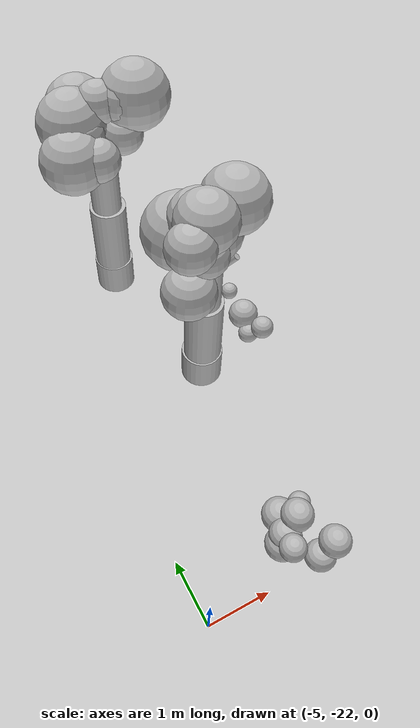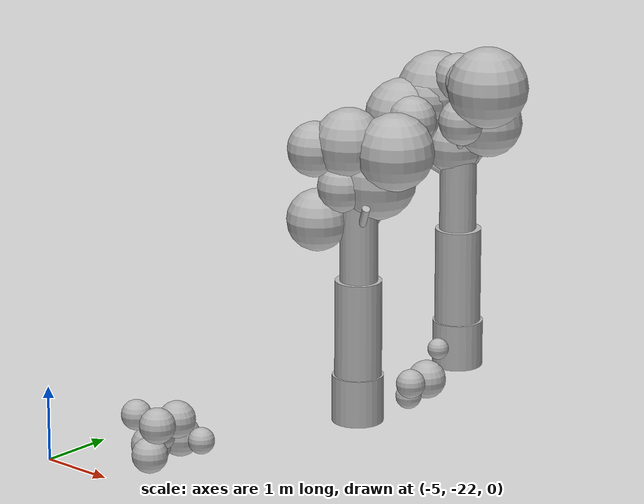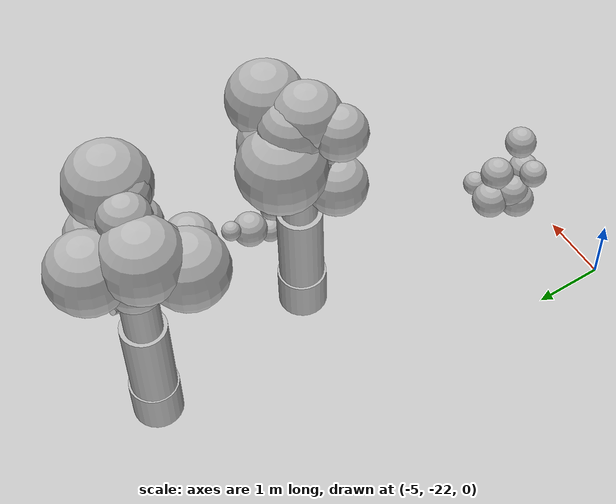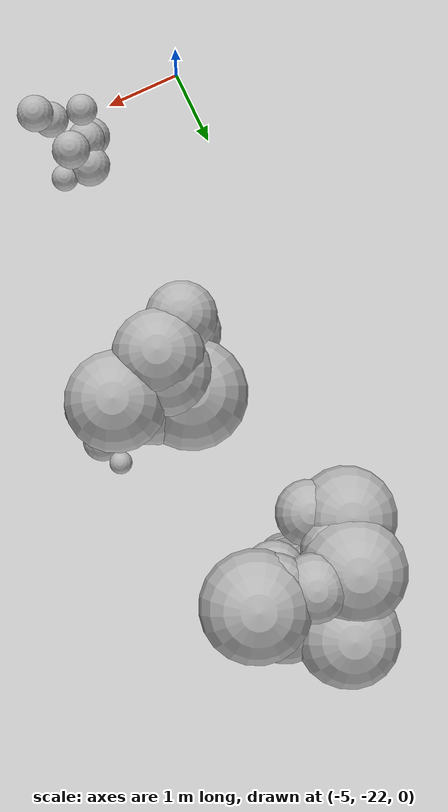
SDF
<sdf version="1.6">
 <world name="default">
  <model name="bush_0">
   <static>true</static>
   <pose>-3.0495 -18.1705 0 0 0 0</pose>
   <link name="trunk">
    <pose>0 0 1.5000 0 0 0</pose>
    <collision name="trunk_c">
     <geometry><cylinder><radius>0.3500</radius><length>3.0000</length></cylinder></geometry>
    </collision>
   </link>
   <link name="trunk_v0">
    <pose>0.0009 -0.0003 0.3100 0 0 0</pose>
    <visual name="trunk_v0_v">
     <geometry><cylinder><radius>0.3448</radius><length>0.6448</length></cylinder></geometry>
     <material>
      <script>
       <uri>model://bushfire/materials/scripts</uri>
       <uri>model://bushfire/materials/textures</uri>
       <name>Bushfire/CharBark</name>
      </script>
     </material>
    </visual>
   </link>
   <link name="trunk_v1">
    <pose>0.0067 -0.0025 1.2700 0 0 0</pose>
    <visual name="trunk_v1_v">
     <geometry><cylinder><radius>0.3150</radius><length>1.3520</length></cylinder></geometry>
     <material>
      <script>
       <uri>model://bushfire/materials/scripts</uri>
       <uri>model://bushfire/materials/textures</uri>
       <name>Bushfire/BarkSmooth</name>
      </script>
     </material>
    </visual>
   </link>
   <link name="trunk_v2">
    <pose>0.0169 -0.0063 2.4600 0 0 0</pose>
    <visual name="trunk_v2_v">
     <geometry><cylinder><radius>0.2520</radius><length>1.1232</length></cylinder></geometry>
     <material>
      <script>
       <uri>model://bushfire/materials/scripts</uri>
       <uri>model://bushfire/materials/textures</uri>
       <name>Bushfire/BarkSmooth</name>
      </script>
     </material>
    </visual>
   </link>
   <link name="branch0">
    <pose>-0.0791 -0.1858 2.6366 0 0.8219 4.3099</pose>
    <visual name="branch0_v">
     <geometry><cylinder><radius>0.0361</radius><length>0.5515</length></cylinder></geometry>
     <material>
      <script>
       <uri>model://bushfire/materials/scripts</uri>
       <uri>model://bushfire/materials/textures</uri>
       <name>Bushfire/BarkSmooth</name>
      </script>
     </material>
    </visual>
   </link>
   <link name="branch1">
    <pose>0.1808 -0.1311 2.7797 0 0.6732 5.6557</pose>
    <visual name="branch1_v">
     <geometry><cylinder><radius>0.0528</radius><length>0.7163</length></cylinder></geometry>
     <material>
      <script>
       <uri>model://bushfire/materials/scripts</uri>
       <uri>model://bushfire/materials/textures</uri>
       <name>Bushfire/BarkSmooth</name>
      </script>
     </material>
    </visual>
   </link>
   <link name="branch2">
    <pose>0.0905 0.2802 2.7476 0 0.7163 7.5415</pose>
    <visual name="branch2_v">
     <geometry><cylinder><radius>0.0483</radius><length>0.8970</length></cylinder></geometry>
     <material>
      <script>
       <uri>model://bushfire/materials/scripts</uri>
       <uri>model://bushfire/materials/textures</uri>
       <name>Bushfire/BarkSmooth</name>
      </script>
     </material>
    </visual>
   </link>
   <link name="branch3">
    <pose>-0.2677 0.0997 2.7489 0 0.9851 9.0681</pose>
    <visual name="branch3_v">
     <geometry><cylinder><radius>0.0466</radius><length>0.6857</length></cylinder></geometry>
     <material>
      <script>
       <uri>model://bushfire/materials/scripts</uri>
       <uri>model://bushfire/materials/textures</uri>
       <name>Bushfire/BarkSmooth</name>
      </script>
     </material>
    </visual>
   </link>
   <link name="foliage0">
    <pose>-0.4312 -0.3208 2.7624 0 0 0</pose>
    <visual name="foliage0_v">
     <geometry><sphere><radius>0.4145</radius></sphere></geometry>
     <material>
      <script>
       <uri>model://bushfire/materials/scripts</uri>
       <uri>model://bushfire/materials/textures</uri>
       <name>Bushfire/Foliage1</name>
      </script>
     </material>
    </visual>
   </link>
   <link name="foliage1">
    <pose>-0.0678 -0.1125 3.8345 0 0 0</pose>
    <visual name="foliage1_v">
     <geometry><sphere><radius>0.4688</radius></sphere></geometry>
     <material>
      <script>
       <uri>model://bushfire/materials/scripts</uri>
       <uri>model://bushfire/materials/textures</uri>
       <name>Bushfire/Foliage2</name>
      </script>
     </material>
    </visual>
   </link>
   <link name="foliage2">
    <pose>-0.1807 0.4603 3.4668 0 0 0</pose>
    <visual name="foliage2_v">
     <geometry><sphere><radius>0.3575</radius></sphere></geometry>
     <material>
      <script>
       <uri>model://bushfire/materials/scripts</uri>
       <uri>model://bushfire/materials/textures</uri>
       <name>Bushfire/Foliage1</name>
      </script>
     </material>
    </visual>
   </link>
   <link name="foliage3">
    <pose>-0.2099 0.3527 3.2885 0 0 0</pose>
    <visual name="foliage3_v">
     <geometry><sphere><radius>0.5934</radius></sphere></geometry>
     <material>
      <script>
       <uri>model://bushfire/materials/scripts</uri>
       <uri>model://bushfire/materials/textures</uri>
       <name>Bushfire/Foliage2</name>
      </script>
     </material>
    </visual>
   </link>
   <link name="foliage4">
    <pose>-0.4386 -0.3681 3.7362 0 0 0</pose>
    <visual name="foliage4_v">
     <geometry><sphere><radius>0.3673</radius></sphere></geometry>
     <material>
      <script>
       <uri>model://bushfire/materials/scripts</uri>
       <uri>model://bushfire/materials/textures</uri>
       <name>Bushfire/Foliage1</name>
      </script>
     </material>
    </visual>
   </link>
   <link name="foliage5">
    <pose>-0.0781 0.0973 3.7085 0 0 0</pose>
    <visual name="foliage5_v">
     <geometry><sphere><radius>0.4466</radius></sphere></geometry>
     <material>
      <script>
       <uri>model://bushfire/materials/scripts</uri>
       <uri>model://bushfire/materials/textures</uri>
       <name>Bushfire/Foliage2</name>
      </script>
     </material>
    </visual>
   </link>
   <link name="foliage6">
    <pose>0.1461 0.1936 3.3057 0 0 0</pose>
    <visual name="foliage6_v">
     <geometry><sphere><radius>0.5266</radius></sphere></geometry>
     <material>
      <script>
       <uri>model://bushfire/materials/scripts</uri>
       <uri>model://bushfire/materials/textures</uri>
       <name>Bushfire/Foliage2</name>
      </script>
     </material>
    </visual>
   </link>
   <link name="foliage7">
    <pose>-0.2467 -0.0864 3.1182 0 0 0</pose>
    <visual name="foliage7_v">
     <geometry><sphere><radius>0.2481</radius></sphere></geometry>
     <material>
      <script>
       <uri>model://bushfire/materials/scripts</uri>
       <uri>model://bushfire/materials/textures</uri>
       <name>Bushfire/Foliage2</name>
      </script>
     </material>
    </visual>
   </link>
   <link name="foliage8">
    <pose>-0.0999 -0.1999 3.2513 0 0 0</pose>
    <visual name="foliage8_v">
     <geometry><sphere><radius>0.3371</radius></sphere></geometry>
     <material>
      <script>
       <uri>model://bushfire/materials/scripts</uri>
       <uri>model://bushfire/materials/textures</uri>
       <name>Bushfire/Foliage0</name>
      </script>
     </material>
    </visual>
   </link>
   <link name="foliage9">
    <pose>0.5142 0.1287 3.7708 0 0 0</pose>
    <visual name="foliage9_v">
     <geometry><sphere><radius>0.5174</radius></sphere></geometry>
     <material>
      <script>
       <uri>model://bushfire/materials/scripts</uri>
       <uri>model://bushfire/materials/textures</uri>
       <name>Bushfire/Foliage2</name>
      </script>
     </material>
    </visual>
   </link>
   <link name="foliage10">
    <pose>-0.0479 0.1669 3.2085 0 0 0</pose>
    <visual name="foliage10_v">
     <geometry><sphere><radius>0.3656</radius></sphere></geometry>
     <material>
      <script>
       <uri>model://bushfire/materials/scripts</uri>
       <uri>model://bushfire/materials/textures</uri>
       <name>Bushfire/Foliage0</name>
      </script>
     </material>
    </visual>
   </link>
  </model>
  <model name="bush_7">
   <static>true</static>
   <pose>-3.5205 -15.5492 0 0 0 0</pose>
   <link name="trunk">
    <pose>0 0 1.5000 0 0 0</pose>
    <collision name="trunk_c">
     <geometry><cylinder><radius>0.3500</radius><length>3.0000</length></cylinder></geometry>
    </collision>
   </link>
   <link name="trunk_v0">
    <pose>-0.0009 -0.0003 0.3100 0 0 0</pose>
    <visual name="trunk_v0_v">
     <geometry><cylinder><radius>0.3448</radius><length>0.6448</length></cylinder></geometry>
     <material>
      <script>
       <uri>model://bushfire/materials/scripts</uri>
       <uri>model://bushfire/materials/textures</uri>
       <name>Bushfire/CharBark</name>
      </script>
     </material>
    </visual>
   </link>
   <link name="trunk_v1">
    <pose>-0.0064 -0.0021 1.2700 0 0 0</pose>
    <visual name="trunk_v1_v">
     <geometry><cylinder><radius>0.3150</radius><length>1.3520</length></cylinder></geometry>
     <material>
      <script>
       <uri>model://bushfire/materials/scripts</uri>
       <uri>model://bushfire/materials/textures</uri>
       <name>Bushfire/BarkSmooth</name>
      </script>
     </material>
    </visual>
   </link>
   <link name="trunk_v2">
    <pose>-0.0163 -0.0054 2.4600 0 0 0</pose>
    <visual name="trunk_v2_v">
     <geometry><cylinder><radius>0.2520</radius><length>1.1232</length></cylinder></geometry>
     <material>
      <script>
       <uri>model://bushfire/materials/scripts</uri>
       <uri>model://bushfire/materials/textures</uri>
       <name>Bushfire/BarkSmooth</name>
      </script>
     </material>
    </visual>
   </link>
   <link name="branch0">
    <pose>-0.2196 -0.2432 2.8121 0 0.9816 3.9781</pose>
    <visual name="branch0_v">
     <geometry><cylinder><radius>0.0389</radius><length>0.7883</length></cylinder></geometry>
     <material>
      <script>
       <uri>model://bushfire/materials/scripts</uri>
       <uri>model://bushfire/materials/textures</uri>
       <name>Bushfire/BarkSmooth</name>
      </script>
     </material>
    </visual>
   </link>
   <link name="branch1">
    <pose>0.1298 -0.1513 3.0993 0 0.5980 5.4213</pose>
    <visual name="branch1_v">
     <geometry><cylinder><radius>0.0487</radius><length>0.7082</length></cylinder></geometry>
     <material>
      <script>
       <uri>model://bushfire/materials/scripts</uri>
       <uri>model://bushfire/materials/textures</uri>
       <name>Bushfire/BarkSmooth</name>
      </script>
     </material>
    </visual>
   </link>
   <link name="branch2">
    <pose>0.1884 0.0804 2.9165 0 0.6568 6.6864</pose>
    <visual name="branch2_v">
     <geometry><cylinder><radius>0.0491</radius><length>0.6710</length></cylinder></geometry>
     <material>
      <script>
       <uri>model://bushfire/materials/scripts</uri>
       <uri>model://bushfire/materials/textures</uri>
       <name>Bushfire/BarkSmooth</name>
      </script>
     </material>
    </visual>
   </link>
   <link name="branch3">
    <pose>-0.1658 0.2160 2.7485 0 0.7866 8.5086</pose>
    <visual name="branch3_v">
     <geometry><cylinder><radius>0.0413</radius><length>0.7693</length></cylinder></geometry>
     <material>
      <script>
       <uri>model://bushfire/materials/scripts</uri>
       <uri>model://bushfire/materials/textures</uri>
       <name>Bushfire/BarkSmooth</name>
      </script>
     </material>
    </visual>
   </link>
   <link name="foliage0">
    <pose>-0.6149 -0.4752 3.5310 0 0 0</pose>
    <visual name="foliage0_v">
     <geometry><sphere><radius>0.5159</radius></sphere></geometry>
     <material>
      <script>
       <uri>model://bushfire/materials/scripts</uri>
       <uri>model://bushfire/materials/textures</uri>
       <name>Bushfire/Foliage2</name>
      </script>
     </material>
    </visual>
   </link>
   <link name="foliage1">
    <pose>0.0142 -0.0523 4.0876 0 0 0</pose>
    <visual name="foliage1_v">
     <geometry><sphere><radius>0.3381</radius></sphere></geometry>
     <material>
      <script>
       <uri>model://bushfire/materials/scripts</uri>
       <uri>model://bushfire/materials/textures</uri>
       <name>Bushfire/Foliage1</name>
      </script>
     </material>
    </visual>
   </link>
   <link name="foliage2">
    <pose>0.3661 0.1602 3.4779 0 0 0</pose>
    <visual name="foliage2_v">
     <geometry><sphere><radius>0.4623</radius></sphere></geometry>
     <material>
      <script>
       <uri>model://bushfire/materials/scripts</uri>
       <uri>model://bushfire/materials/textures</uri>
       <name>Bushfire/Foliage2</name>
      </script>
     </material>
    </visual>
   </link>
   <link name="foliage3">
    <pose>-0.4181 -0.0044 3.8278 0 0 0</pose>
    <visual name="foliage3_v">
     <geometry><sphere><radius>0.5379</radius></sphere></geometry>
     <material>
      <script>
       <uri>model://bushfire/materials/scripts</uri>
       <uri>model://bushfire/materials/textures</uri>
       <name>Bushfire/Foliage2</name>
      </script>
     </material>
    </visual>
   </link>
   <link name="foliage4">
    <pose>-0.2859 -0.6741 3.5659 0 0 0</pose>
    <visual name="foliage4_v">
     <geometry><sphere><radius>0.3381</radius></sphere></geometry>
     <material>
      <script>
       <uri>model://bushfire/materials/scripts</uri>
       <uri>model://bushfire/materials/textures</uri>
       <name>Bushfire/Foliage0</name>
      </script>
     </material>
    </visual>
   </link>
   <link name="foliage5">
    <pose>0.2811 -0.2909 3.5738 0 0 0</pose>
    <visual name="foliage5_v">
     <geometry><sphere><radius>0.3214</radius></sphere></geometry>
     <material>
      <script>
       <uri>model://bushfire/materials/scripts</uri>
       <uri>model://bushfire/materials/textures</uri>
       <name>Bushfire/Foliage2</name>
      </script>
     </material>
    </visual>
   </link>
   <link name="foliage6">
    <pose>-0.1185 0.0322 3.1128 0 0 0</pose>
    <visual name="foliage6_v">
     <geometry><sphere><radius>0.4140</radius></sphere></geometry>
     <material>
      <script>
       <uri>model://bushfire/materials/scripts</uri>
       <uri>model://bushfire/materials/textures</uri>
       <name>Bushfire/Foliage2</name>
      </script>
     </material>
    </visual>
   </link>
   <link name="foliage7">
    <pose>-0.1155 0.5593 3.6492 0 0 0</pose>
    <visual name="foliage7_v">
     <geometry><sphere><radius>0.5189</radius></sphere></geometry>
     <material>
      <script>
       <uri>model://bushfire/materials/scripts</uri>
       <uri>model://bushfire/materials/textures</uri>
       <name>Bushfire/Foliage1</name>
      </script>
     </material>
    </visual>
   </link>
   <link name="foliage8">
    <pose>-0.3507 -0.2454 3.7703 0 0 0</pose>
    <visual name="foliage8_v">
     <geometry><sphere><radius>0.3472</radius></sphere></geometry>
     <material>
      <script>
       <uri>model://bushfire/materials/scripts</uri>
       <uri>model://bushfire/materials/textures</uri>
       <name>Bushfire/Foliage1</name>
      </script>
     </material>
    </visual>
   </link>
   <link name="foliage9">
    <pose>0.3439 -0.2090 4.1105 0 0 0</pose>
    <visual name="foliage9_v">
     <geometry><sphere><radius>0.3359</radius></sphere></geometry>
     <material>
      <script>
       <uri>model://bushfire/materials/scripts</uri>
       <uri>model://bushfire/materials/textures</uri>
       <name>Bushfire/Foliage2</name>
      </script>
     </material>
    </visual>
   </link>
   <link name="foliage10">
    <pose>0.5855 -0.1279 4.0733 0 0 0</pose>
    <visual name="foliage10_v">
     <geometry><sphere><radius>0.5515</radius></sphere></geometry>
     <material>
      <script>
       <uri>model://bushfire/materials/scripts</uri>
       <uri>model://bushfire/materials/textures</uri>
       <name>Bushfire/Foliage2</name>
      </script>
     </material>
    </visual>
   </link>
  </model>
  <model name="scrub">
   <static>true</static>
   <link name="scrub14_0">
    <pose>-3.0420 -21.2062 0.5262 0 0 0</pose>
    <visual name="scrub14_0_v">
     <geometry><sphere><radius>0.1732</radius></sphere></geometry>
     <material>
      <script>
       <uri>model://bushfire/materials/scripts</uri>
       <uri>model://bushfire/materials/textures</uri>
       <name>Bushfire/Foliage1</name>
      </script>
     </material>
    </visual>
   </link>
   <link name="scrub14_1">
    <pose>-3.3997 -21.2192 0.5099 0 0 0</pose>
    <visual name="scrub14_1_v">
     <geometry><sphere><radius>0.2645</radius></sphere></geometry>
     <material>
      <script>
       <uri>model://bushfire/materials/scripts</uri>
       <uri>model://bushfire/materials/textures</uri>
       <name>Bushfire/Foliage2</name>
      </script>
     </material>
    </visual>
   </link>
   <link name="scrub14_2">
    <pose>-3.5977 -21.8174 0.9104 0 0 0</pose>
    <visual name="scrub14_2_v">
     <geometry><sphere><radius>0.1978</radius></sphere></geometry>
     <material>
      <script>
       <uri>model://bushfire/materials/scripts</uri>
       <uri>model://bushfire/materials/textures</uri>
       <name>Bushfire/Foliage2</name>
      </script>
     </material>
    </visual>
   </link>
   <link name="scrub14_3">
    <pose>-3.2605 -21.4259 0.8226 0 0 0</pose>
    <visual name="scrub14_3_v">
     <geometry><sphere><radius>0.2437</radius></sphere></geometry>
     <material>
      <script>
       <uri>model://bushfire/materials/scripts</uri>
       <uri>model://bushfire/materials/textures</uri>
       <name>Bushfire/Foliage2</name>
      </script>
     </material>
    </visual>
   </link>
   <link name="scrub14_4">
    <pose>-3.0415 -22.0130 0.9473 0 0 0</pose>
    <visual name="scrub14_4_v">
     <geometry><sphere><radius>0.2325</radius></sphere></geometry>
     <material>
      <script>
       <uri>model://bushfire/materials/scripts</uri>
       <uri>model://bushfire/materials/textures</uri>
       <name>Bushfire/Foliage0</name>
      </script>
     </material>
    </visual>
   </link>
   <link name="scrub14_5">
    <pose>-3.5681 -21.5859 0.4448 0 0 0</pose>
    <visual name="scrub14_5_v">
     <geometry><sphere><radius>0.2594</radius></sphere></geometry>
     <material>
      <script>
       <uri>model://bushfire/materials/scripts</uri>
       <uri>model://bushfire/materials/textures</uri>
       <name>Bushfire/Foliage1</name>
      </script>
     </material>
    </visual>
   </link>
   <link name="scrub14_6">
    <pose>-3.5006 -21.5336 0.6013 0 0 0</pose>
    <visual name="scrub14_6_v">
     <geometry><sphere><radius>0.2437</radius></sphere></geometry>
     <material>
      <script>
       <uri>model://bushfire/materials/scripts</uri>
       <uri>model://bushfire/materials/textures</uri>
       <name>Bushfire/Foliage2</name>
      </script>
     </material>
    </visual>
   </link>
   <link name="scrub14_7">
    <pose>-3.1954 -21.9967 0.5109 0 0 0</pose>
    <visual name="scrub14_7_v">
     <geometry><sphere><radius>0.2324</radius></sphere></geometry>
     <material>
      <script>
       <uri>model://bushfire/materials/scripts</uri>
       <uri>model://bushfire/materials/textures</uri>
       <name>Bushfire/Foliage1</name>
      </script>
     </material>
    </visual>
   </link>
   <link name="scrub57_0">
    <pose>-1.9767 -18.3484 0.7932 0 0 0</pose>
    <visual name="scrub57_0_v">
     <geometry><sphere><radius>0.1917</radius></sphere></geometry>
     <material>
      <script>
       <uri>model://bushfire/materials/scripts</uri>
       <uri>model://bushfire/materials/textures</uri>
       <name>Bushfire/Foliage2</name>
      </script>
     </material>
    </visual>
   </link>
   <link name="scrub57_1">
    <pose>-2.1429 -18.1940 0.5476 0 0 0</pose>
    <visual name="scrub57_1_v">
     <geometry><sphere><radius>0.1715</radius></sphere></geometry>
     <material>
      <script>
       <uri>model://bushfire/materials/scripts</uri>
       <uri>model://bushfire/materials/textures</uri>
       <name>Bushfire/Foliage2</name>
      </script>
     </material>
    </visual>
   </link>
   <link name="scrub57_5">
    <pose>-2.0836 -17.8986 0.7151 0 0 0</pose>
    <visual name="scrub57_5_v">
     <geometry><sphere><radius>0.2543</radius></sphere></geometry>
     <material>
      <script>
       <uri>model://bushfire/materials/scripts</uri>
       <uri>model://bushfire/materials/textures</uri>
       <name>Bushfire/Foliage2</name>
      </script>
     </material>
    </visual>
   </link>
   <link name="scrub57_6">
    <pose>-2.1851 -17.5503 1.0251 0 0 0</pose>
    <visual name="scrub57_6_v">
     <geometry><sphere><radius>0.1402</radius></sphere></geometry>
     <material>
      <script>
       <uri>model://bushfire/materials/scripts</uri>
       <uri>model://bushfire/materials/textures</uri>
       <name>Bushfire/Foliage0</name>
      </script>
     </material>
    </visual>
   </link>
  </model>
 </world>
</sdf>
